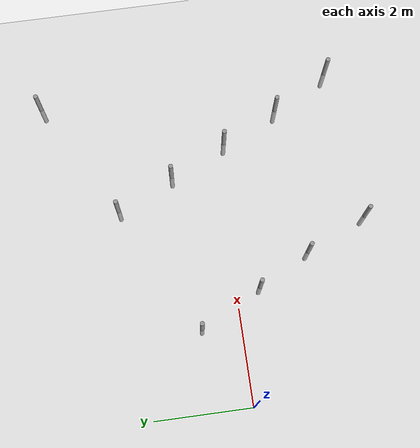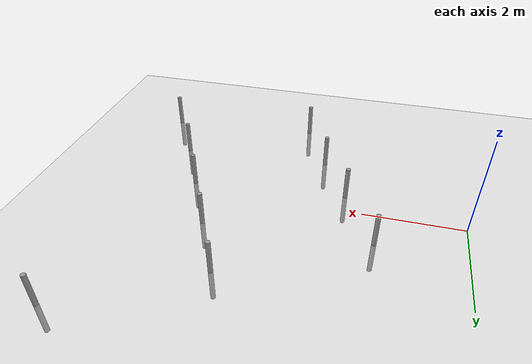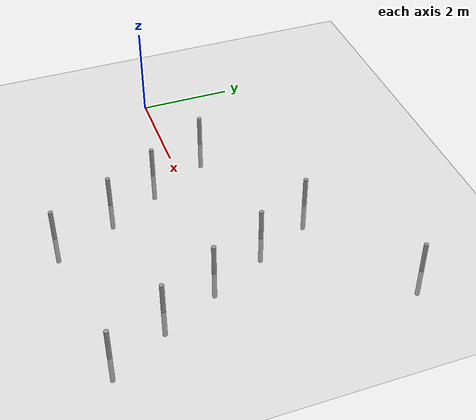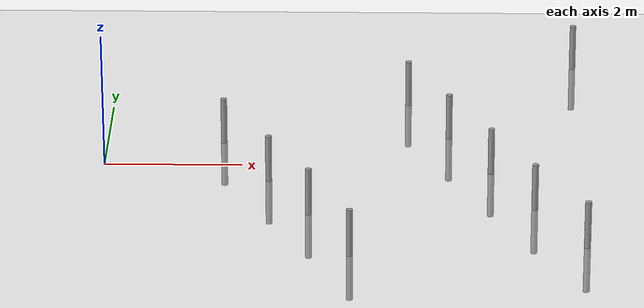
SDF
<sdf version="1.4">
 <world name="default">
  <model name="unit_cylinder_1">
   <static>0</static>
   <pose>1.7 0.8 0.0 0.0 0.0 0.0</pose>
   <link name="link">
    <inertial>
     <mass>1</mass>
     <inertia><ixz>0</ixz><ixx>1</ixx><ixy>0</ixy><izz>1</izz><iyy>1</iyy><iyz>0</iyz></inertia>
    </inertial>
    <collision name="collision">
     <geometry><cylinder><length>1.38235</length><radius>0.0456111</radius></cylinder></geometry>
    </collision>
    <visual name="visual">
     <geometry><cylinder><length>1.38235</length><radius>0.0456111</radius></cylinder></geometry>
     <material>
      <script><uri>file://media/materials/scripts/gazebo.material</uri><name>Gazebo/Grey</name></script>
     </material>
    </visual>
    <velocity_decay><linear>0</linear><angular>0</angular></velocity_decay>
   </link>
  </model>
  <model name="unit_cylinder_1">
   <static>0</static>
   <pose>4.4 2.2 0.0 0.0 0.0 0.0</pose>
   <link name="link">
    <inertial>
     <mass>1</mass>
     <inertia><ixz>0</ixz><ixx>1</ixx><ixy>0</ixy><izz>1</izz><iyy>1</iyy><iyz>0</iyz></inertia>
    </inertial>
    <collision name="collision">
     <geometry><cylinder><length>1.38235</length><radius>0.0456111</radius></cylinder></geometry>
    </collision>
    <visual name="visual">
     <geometry><cylinder><length>1.38235</length><radius>0.0456111</radius></cylinder></geometry>
     <material>
      <script><uri>file://media/materials/scripts/gazebo.material</uri><name>Gazebo/Grey</name></script>
     </material>
    </visual>
    <velocity_decay><linear>0</linear><angular>0</angular></velocity_decay>
   </link>
  </model>
  <model name="unit_cylinder_1">
   <static>0</static>
   <pose>6.9 3.6 0.0 0.0 0.0 0.0</pose>
   <link name="link">
    <inertial>
     <mass>1</mass>
     <inertia><ixz>0</ixz><ixx>1</ixx><ixy>0</ixy><izz>1</izz><iyy>1</iyy><iyz>0</iyz></inertia>
    </inertial>
    <collision name="collision">
     <geometry><cylinder><length>1.38235</length><radius>0.0456111</radius></cylinder></geometry>
    </collision>
    <visual name="visual">
     <geometry><cylinder><length>1.38235</length><radius>0.0456111</radius></cylinder></geometry>
     <material>
      <script><uri>file://media/materials/scripts/gazebo.material</uri><name>Gazebo/Grey</name></script>
     </material>
    </visual>
    <velocity_decay><linear>0</linear><angular>0</angular></velocity_decay>
   </link>
  </model>
  <model name="unit_cylinder_1">
   <static>0</static>
   <pose>5.0 1.0 0.0 0.0 0.0 0.0</pose>
   <link name="link">
    <inertial>
     <mass>1</mass>
     <inertia><ixz>0</ixz><ixx>1</ixx><ixy>0</ixy><izz>1</izz><iyy>1</iyy><iyz>0</iyz></inertia>
    </inertial>
    <collision name="collision">
     <geometry><cylinder><length>1.38235</length><radius>0.0456111</radius></cylinder></geometry>
    </collision>
    <visual name="visual">
     <geometry><cylinder><length>1.38235</length><radius>0.0456111</radius></cylinder></geometry>
     <material>
      <script><uri>file://media/materials/scripts/gazebo.material</uri><name>Gazebo/Grey</name></script>
     </material>
    </visual>
    <velocity_decay><linear>0</linear><angular>0</angular></velocity_decay>
   </link>
  </model>
  <model name="unit_cylinder_1">
   <static>0</static>
   <pose>2.4 -0.5 0.0 0.0 0.0 0.0</pose>
   <link name="link">
    <inertial>
     <mass>1</mass>
     <inertia><ixz>0</ixz><ixx>1</ixx><ixy>0</ixy><izz>1</izz><iyy>1</iyy><iyz>0</iyz></inertia>
    </inertial>
    <collision name="collision">
     <geometry><cylinder><length>1.38235</length><radius>0.0456111</radius></cylinder></geometry>
    </collision>
    <visual name="visual">
     <geometry><cylinder><length>1.38235</length><radius>0.0456111</radius></cylinder></geometry>
     <material>
      <script><uri>file://media/materials/scripts/gazebo.material</uri><name>Gazebo/Grey</name></script>
     </material>
    </visual>
    <velocity_decay><linear>0</linear><angular>0</angular></velocity_decay>
   </link>
  </model>
  <model name="unit_cylinder_1">
   <static>0</static>
   <pose>3.0 -1.6 0.0 0.0 0.0 0.0</pose>
   <link name="link">
    <inertial>
     <mass>1</mass>
     <inertia><ixz>0</ixz><ixx>1</ixx><ixy>0</ixy><izz>1</izz><iyy>1</iyy><iyz>0</iyz></inertia>
    </inertial>
    <collision name="collision">
     <geometry><cylinder><length>1.38235</length><radius>0.0456111</radius></cylinder></geometry>
    </collision>
    <visual name="visual">
     <geometry><cylinder><length>1.38235</length><radius>0.0456111</radius></cylinder></geometry>
     <material>
      <script><uri>file://media/materials/scripts/gazebo.material</uri><name>Gazebo/Grey</name></script>
     </material>
    </visual>
    <velocity_decay><linear>0</linear><angular>0</angular></velocity_decay>
   </link>
  </model>
  <model name="unit_cylinder_1">
   <static>0</static>
   <pose>5.6 -0.2 0.0 0.0 0.0 0.0</pose>
   <link name="link">
    <inertial>
     <mass>1</mass>
     <inertia><ixz>0</ixz><ixx>1</ixx><ixy>0</ixy><izz>1</izz><iyy>1</iyy><iyz>0</iyz></inertia>
    </inertial>
    <collision name="collision">
     <geometry><cylinder><length>1.38235</length><radius>0.0456111</radius></cylinder></geometry>
    </collision>
    <visual name="visual">
     <geometry><cylinder><length>1.38235</length><radius>0.0456111</radius></cylinder></geometry>
     <material>
      <script><uri>file://media/materials/scripts/gazebo.material</uri><name>Gazebo/Grey</name></script>
     </material>
    </visual>
    <velocity_decay><linear>0</linear><angular>0</angular></velocity_decay>
   </link>
  </model>
  <model name="unit_cylinder_1">
   <static>0</static>
   <pose>6.2 -1.4 0.0 0.0 0.0 0.0</pose>
   <link name="link">
    <inertial>
     <mass>1</mass>
     <inertia><ixz>0</ixz><ixx>1</ixx><ixy>0</ixy><izz>1</izz><iyy>1</iyy><iyz>0</iyz></inertia>
    </inertial>
    <collision name="collision">
     <geometry><cylinder><length>1.38235</length><radius>0.0456111</radius></cylinder></geometry>
    </collision>
    <visual name="visual">
     <geometry><cylinder><length>1.38235</length><radius>0.0456111</radius></cylinder></geometry>
     <material>
      <script><uri>file://media/materials/scripts/gazebo.material</uri><name>Gazebo/Grey</name></script>
     </material>
    </visual>
    <velocity_decay><linear>0</linear><angular>0</angular></velocity_decay>
   </link>
  </model>
  <model name="unit_cylinder_1">
   <static>0</static>
   <pose>3.6 -2.9 0.0 0.0 0.0 0.0</pose>
   <link name="link">
    <inertial>
     <mass>1</mass>
     <inertia><ixz>0</ixz><ixx>1</ixx><ixy>0</ixy><izz>1</izz><iyy>1</iyy><iyz>0</iyz></inertia>
    </inertial>
    <collision name="collision">
     <geometry><cylinder><length>1.38235</length><radius>0.0456111</radius></cylinder></geometry>
    </collision>
    <visual name="visual">
     <geometry><cylinder><length>1.38235</length><radius>0.0456111</radius></cylinder></geometry>
     <material>
      <script><uri>file://media/materials/scripts/gazebo.material</uri><name>Gazebo/Grey</name></script>
     </material>
    </visual>
    <velocity_decay><linear>0</linear><angular>0</angular></velocity_decay>
   </link>
  </model>
  <model name="unit_cylinder_1">
   <static>0</static>
   <pose>6.9 -2.6 0.0 0.0 0.0 0.0</pose>
   <link name="link">
    <inertial>
     <mass>1</mass>
     <inertia><ixz>0</ixz><ixx>1</ixx><ixy>0</ixy><izz>1</izz><iyy>1</iyy><iyz>0</iyz></inertia>
    </inertial>
    <collision name="collision">
     <geometry><cylinder><length>1.38235</length><radius>0.0456111</radius></cylinder></geometry>
    </collision>
    <visual name="visual">
     <geometry><cylinder><length>1.38235</length><radius>0.0456111</radius></cylinder></geometry>
     <material>
      <script><uri>file://media/materials/scripts/gazebo.material</uri><name>Gazebo/Grey</name></script>
     </material>
    </visual>
    <velocity_decay><linear>0</linear><angular>0</angular></velocity_decay>
   </link>
  </model>
  <include><uri>model://sun</uri></include>
  <include><uri>model://ground_plane</uri></include>
 </world>
</sdf>
